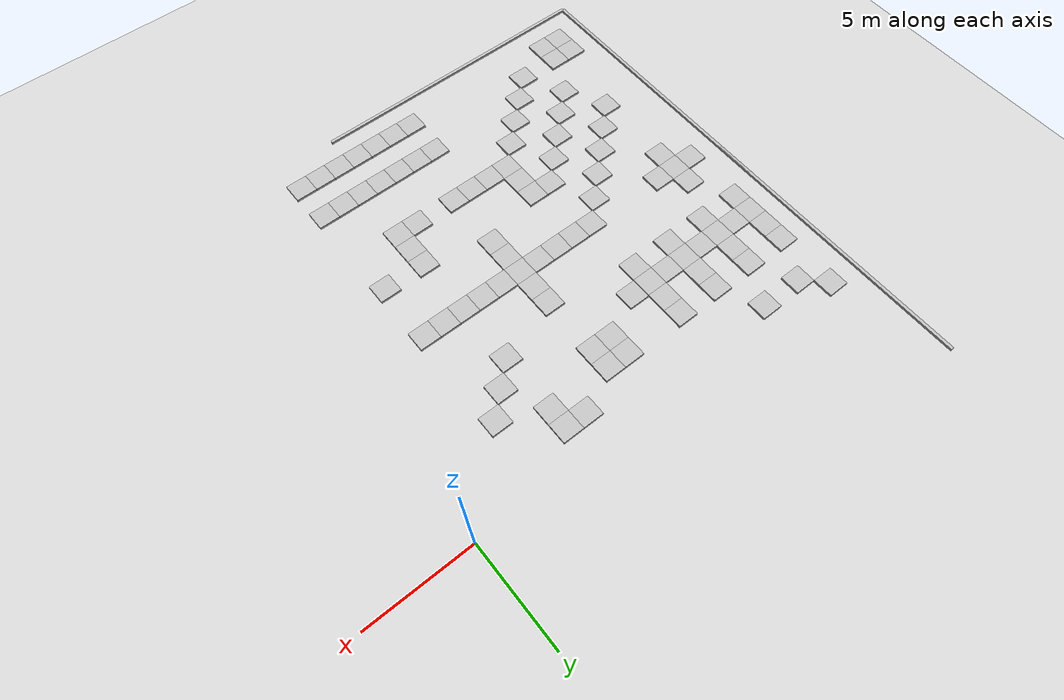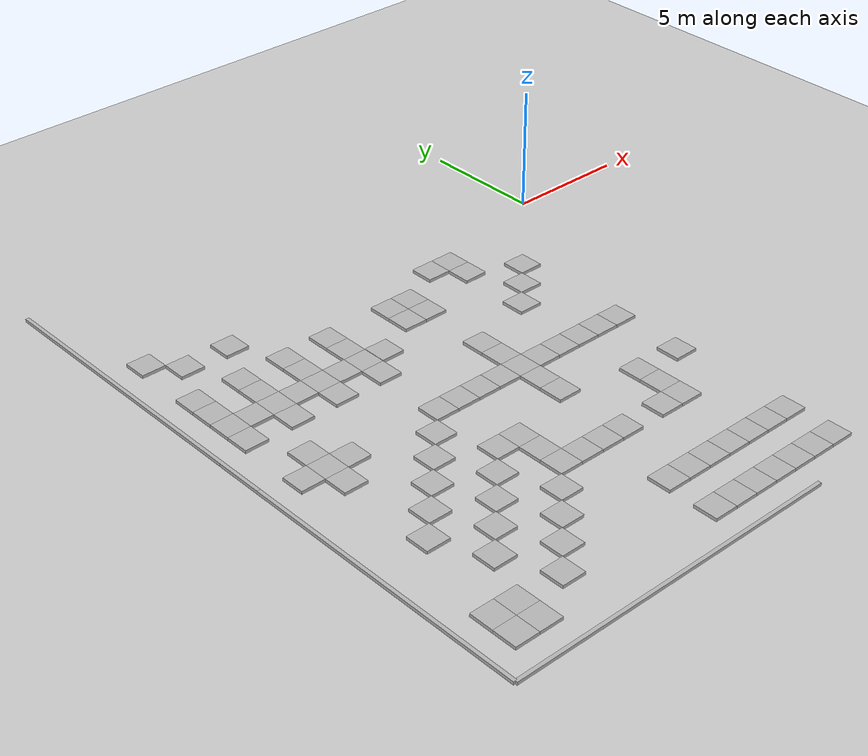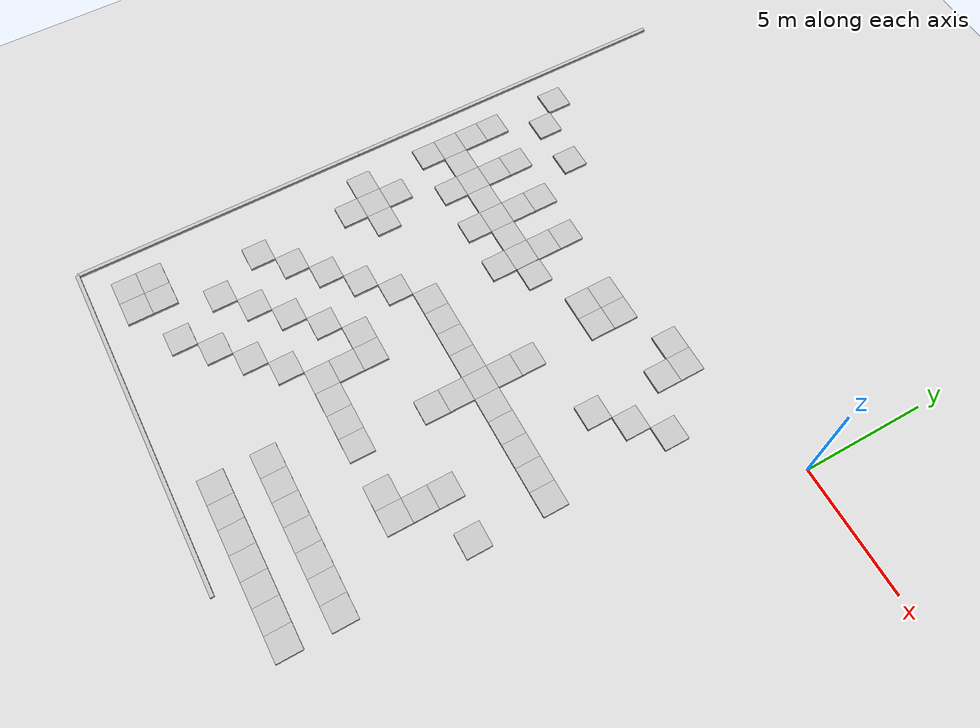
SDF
<sdf version="1.7">
 <world name="default">
  <model name="ground_plane">
   <static>1</static>
   <link name="link">
    <collision name="collision">
     <geometry><plane><normal>0 0 1</normal><size>100 100</size></plane></geometry>
     <surface>
      <contact><collide_bitmask>65535</collide_bitmask></contact>
      <friction><ode><mu>100</mu><mu2>50</mu2></ode></friction>
     </surface>
    </collision>
    <visual name="visual">
     <cast_shadows>0</cast_shadows>
     <geometry><plane><normal>0 0 1</normal><size>100 100</size></plane></geometry>
     <material>
      <script><uri>file://media/materials/scripts/gazebo.material</uri><name>Gazebo/Grey</name></script>
     </material>
    </visual>
   </link>
  </model>
  <model name="concrete_barrier_14m_6">
   <static>1</static>
   <link name="link">
    <collision name="concrete_barrier_14m_01">
     <pose>-0 0 0.3 0 -0 0</pose>
     <geometry><box><size>14 0.15 0.6</size></box></geometry>
    </collision>
    <visual name="concrete_barrier_14m_visual">
     <geometry><mesh><uri>model://concrete_barrier_14m/meshes/concrete_barrier_14m.dae</uri></mesh></geometry>
    </visual>
   </link>
   <pose>-13 -20 0 0 0 -1.56953</pose>
  </model>
  <model name="concrete_cube_1m_12">
   <static>1</static>
   <link name="link">
    <collision name="concrete_cube_1m">
     <pose>-0 0 0.3 0 -0 0</pose>
     <geometry><box><size>1 1 0.6</size></box></geometry>
    </collision>
    <visual name="concrete_cube_1m_visual">
     <geometry><mesh><uri>model://concrete_cube_1m/meshes/concrete_cube_1m.dae</uri></mesh></geometry>
    </visual>
   </link>
   <pose>-8.5 -8.5 0 0 -0 0</pose>
  </model>
  <model name="concrete_cube_1m_13">
   <static>1</static>
   <link name="link">
    <collision name="concrete_cube_1m">
     <pose>-0 0 0.3 0 -0 0</pose>
     <geometry><box><size>1 1 0.6</size></box></geometry>
    </collision>
    <visual name="concrete_cube_1m_visual">
     <geometry><mesh><uri>model://concrete_cube_1m/meshes/concrete_cube_1m.dae</uri></mesh></geometry>
    </visual>
   </link>
   <pose>-7.5 -8.5 0 0 -0 0</pose>
  </model>
  <model name="concrete_cube_1m_14">
   <static>1</static>
   <link name="link">
    <collision name="concrete_cube_1m">
     <pose>-0 0 0.3 0 -0 0</pose>
     <geometry><box><size>1 1 0.6</size></box></geometry>
    </collision>
    <visual name="concrete_cube_1m_visual">
     <geometry><mesh><uri>model://concrete_cube_1m/meshes/concrete_cube_1m.dae</uri></mesh></geometry>
    </visual>
   </link>
   <pose>-6.5 -8.5 0 0 -0 0</pose>
  </model>
  <model name="concrete_cube_1m_15">
   <static>1</static>
   <link name="link">
    <collision name="concrete_cube_1m">
     <pose>-0 0 0.3 0 -0 0</pose>
     <geometry><box><size>1 1 0.6</size></box></geometry>
    </collision>
    <visual name="concrete_cube_1m_visual">
     <geometry><mesh><uri>model://concrete_cube_1m/meshes/concrete_cube_1m.dae</uri></mesh></geometry>
    </visual>
   </link>
   <pose>-8.5 -7.5 0 0 -0 0</pose>
  </model>
  <model name="concrete_cube_1m_16">
   <static>1</static>
   <link name="link">
    <collision name="concrete_cube_1m">
     <pose>-0 0 0.3 0 -0 0</pose>
     <geometry><box><size>1 1 0.6</size></box></geometry>
    </collision>
    <visual name="concrete_cube_1m_visual">
     <geometry><mesh><uri>model://concrete_cube_1m/meshes/concrete_cube_1m.dae</uri></mesh></geometry>
    </visual>
   </link>
   <pose>-8.5 -6.5 0 0 -0 0</pose>
  </model>
  <model name="concrete_cube_1m_88">
   <static>1</static>
   <link name="link">
    <collision name="concrete_cube_1m">
     <pose>-0 0 0.3 0 -0 0</pose>
     <geometry><box><size>1 1 0.6</size></box></geometry>
    </collision>
    <visual name="concrete_cube_1m_visual">
     <geometry><mesh><uri>model://concrete_cube_1m/meshes/concrete_cube_1m.dae</uri></mesh></geometry>
    </visual>
   </link>
   <pose>-5.5 -8.5 0 0 -0 0</pose>
  </model>
  <model name="concrete_cube_1m_89">
   <static>1</static>
   <link name="link">
    <collision name="concrete_cube_1m">
     <pose>-0 0 0.3 0 -0 0</pose>
     <geometry><box><size>1 1 0.6</size></box></geometry>
    </collision>
    <visual name="concrete_cube_1m_visual">
     <geometry><mesh><uri>model://concrete_cube_1m/meshes/concrete_cube_1m.dae</uri></mesh></geometry>
    </visual>
   </link>
   <pose>-4.5 -8.5 0 0 -0 0</pose>
  </model>
  <model name="concrete_cube_1m_90">
   <static>1</static>
   <link name="link">
    <collision name="concrete_cube_1m">
     <pose>-0 0 0.3 0 -0 0</pose>
     <geometry><box><size>1 1 0.6</size></box></geometry>
    </collision>
    <visual name="concrete_cube_1m_visual">
     <geometry><mesh><uri>model://concrete_cube_1m/meshes/concrete_cube_1m.dae</uri></mesh></geometry>
    </visual>
   </link>
   <pose>-3.5 -8.5 0 0 -0 0</pose>
  </model>
  <model name="concrete_cube_1m_92">
   <static>1</static>
   <link name="link">
    <collision name="concrete_cube_1m">
     <pose>-0 0 0.3 0 -0 0</pose>
     <geometry><box><size>1 1 0.6</size></box></geometry>
    </collision>
    <visual name="concrete_cube_1m_visual">
     <geometry><mesh><uri>model://concrete_cube_1m/meshes/concrete_cube_1m.dae</uri></mesh></geometry>
    </visual>
   </link>
   <pose>-9.5 -3.5 0 0 -0 0</pose>
  </model>
  <model name="concrete_cube_1m_93">
   <static>1</static>
   <link name="link">
    <collision name="concrete_cube_1m">
     <pose>-0 0 0.3 0 -0 0</pose>
     <geometry><box><size>1 1 0.6</size></box></geometry>
    </collision>
    <visual name="concrete_cube_1m_visual">
     <geometry><mesh><uri>model://concrete_cube_1m/meshes/concrete_cube_1m.dae</uri></mesh></geometry>
    </visual>
   </link>
   <pose>-8.5 -3.5 0 0 -0 0</pose>
  </model>
  <model name="concrete_cube_1m_94">
   <static>1</static>
   <link name="link">
    <collision name="concrete_cube_1m">
     <pose>-0 0 0.3 0 -0 0</pose>
     <geometry><box><size>1 1 0.6</size></box></geometry>
    </collision>
    <visual name="concrete_cube_1m_visual">
     <geometry><mesh><uri>model://concrete_cube_1m/meshes/concrete_cube_1m.dae</uri></mesh></geometry>
    </visual>
   </link>
   <pose>-8.5 -2.5 0 0 -0 0</pose>
  </model>
  <model name="concrete_cube_1m_95">
   <static>1</static>
   <link name="link">
    <collision name="concrete_cube_1m">
     <pose>-0 0 0.3 0 -0 0</pose>
     <geometry><box><size>1 1 0.6</size></box></geometry>
    </collision>
    <visual name="concrete_cube_1m_visual">
     <geometry><mesh><uri>model://concrete_cube_1m/meshes/concrete_cube_1m.dae</uri></mesh></geometry>
    </visual>
   </link>
   <pose>-9.5 -2.5 0 0 -0 0</pose>
  </model>
  <model name="concrete_cube_1m_96">
   <static>1</static>
   <link name="link">
    <collision name="concrete_cube_1m">
     <pose>-0 0 0.3 0 -0 0</pose>
     <geometry><box><size>1 1 0.6</size></box></geometry>
    </collision>
    <visual name="concrete_cube_1m_visual">
     <geometry><mesh><uri>model://concrete_cube_1m/meshes/concrete_cube_1m.dae</uri></mesh></geometry>
    </visual>
   </link>
   <pose>-5.5 -5.5 0 0 -0 0</pose>
  </model>
  <model name="concrete_cube_1m_97">
   <static>1</static>
   <link name="link">
    <collision name="concrete_cube_1m">
     <pose>-0 0 0.3 0 -0 0</pose>
     <geometry><box><size>1 1 0.6</size></box></geometry>
    </collision>
    <visual name="concrete_cube_1m_visual">
     <geometry><mesh><uri>model://concrete_cube_1m/meshes/concrete_cube_1m.dae</uri></mesh></geometry>
    </visual>
   </link>
   <pose>-4.5 -4.5 0 0 -0 0</pose>
  </model>
  <model name="concrete_cube_1m_98">
   <static>1</static>
   <link name="link">
    <collision name="concrete_cube_1m">
     <pose>-0 0 0.3 0 -0 0</pose>
     <geometry><box><size>1 1 0.6</size></box></geometry>
    </collision>
    <visual name="concrete_cube_1m_visual">
     <geometry><mesh><uri>model://concrete_cube_1m/meshes/concrete_cube_1m.dae</uri></mesh></geometry>
    </visual>
   </link>
   <pose>-3.5 -3.5 0 0 -0 0</pose>
  </model>
  <model name="concrete_cube_1m_100">
   <static>1</static>
   <link name="link">
    <collision name="concrete_cube_1m">
     <pose>-0 0 0.3 0 -0 0</pose>
     <geometry><box><size>1 1 0.6</size></box></geometry>
    </collision>
    <visual name="concrete_cube_1m_visual">
     <geometry><mesh><uri>model://concrete_cube_1m/meshes/concrete_cube_1m.dae</uri></mesh></geometry>
    </visual>
   </link>
   <pose>-6.5 -1.5 0 0 -0 0</pose>
  </model>
  <model name="concrete_cube_1m_101">
   <static>1</static>
   <link name="link">
    <collision name="concrete_cube_1m">
     <pose>-0 0 0.3 0 -0 0</pose>
     <geometry><box><size>1 1 0.6</size></box></geometry>
    </collision>
    <visual name="concrete_cube_1m_visual">
     <geometry><mesh><uri>model://concrete_cube_1m/meshes/concrete_cube_1m.dae</uri></mesh></geometry>
    </visual>
   </link>
   <pose>-5.5 -1.5 0 0 -0 0</pose>
  </model>
  <model name="concrete_cube_1m_102">
   <static>1</static>
   <link name="link">
    <collision name="concrete_cube_1m">
     <pose>-0 0 0.3 0 -0 0</pose>
     <geometry><box><size>1 1 0.6</size></box></geometry>
    </collision>
    <visual name="concrete_cube_1m_visual">
     <geometry><mesh><uri>model://concrete_cube_1m/meshes/concrete_cube_1m.dae</uri></mesh></geometry>
    </visual>
   </link>
   <pose>-5.5 -2.5 0 0 -0 0</pose>
  </model>
  <model name="concrete_cube_1m_109">
   <static>1</static>
   <link name="link">
    <collision name="concrete_cube_1m">
     <pose>-0 0 0.3 0 -0 0</pose>
     <geometry><box><size>1 1 0.6</size></box></geometry>
    </collision>
    <visual name="concrete_cube_1m_visual">
     <geometry><mesh><uri>model://concrete_cube_1m/meshes/concrete_cube_1m.dae</uri></mesh></geometry>
    </visual>
   </link>
   <pose>-13.5 -12.5 0 0 -0 0</pose>
  </model>
  <model name="concrete_cube_1m_183">
   <static>1</static>
   <link name="link">
    <collision name="concrete_cube_1m">
     <pose>-0 0 0.3 0 -0 0</pose>
     <geometry><box><size>1 1 0.6</size></box></geometry>
    </collision>
    <visual name="concrete_cube_1m_visual">
     <geometry><mesh><uri>model://concrete_cube_1m/meshes/concrete_cube_1m.dae</uri></mesh></geometry>
    </visual>
   </link>
   <pose>-8.5 -9.5 0 0 -0 0</pose>
  </model>
  <model name="concrete_cube_1m_184">
   <static>1</static>
   <link name="link">
    <collision name="concrete_cube_1m">
     <pose>-0 0 0.3 0 -0 0</pose>
     <geometry><box><size>1 1 0.6</size></box></geometry>
    </collision>
    <visual name="concrete_cube_1m_visual">
     <geometry><mesh><uri>model://concrete_cube_1m/meshes/concrete_cube_1m.dae</uri></mesh></geometry>
    </visual>
   </link>
   <pose>-8.5 -10.5 0 0 -0 0</pose>
  </model>
  <model name="concrete_cube_1m_185">
   <static>1</static>
   <link name="link">
    <collision name="concrete_cube_1m">
     <pose>-0 0 0.3 0 -0 0</pose>
     <geometry><box><size>1 1 0.6</size></box></geometry>
    </collision>
    <visual name="concrete_cube_1m_visual">
     <geometry><mesh><uri>model://concrete_cube_1m/meshes/concrete_cube_1m.dae</uri></mesh></geometry>
    </visual>
   </link>
   <pose>-9.5 -8.5 0 0 -0 0</pose>
  </model>
  <model name="concrete_cube_1m_186">
   <static>1</static>
   <link name="link">
    <collision name="concrete_cube_1m">
     <pose>-0 0 0.3 0 -0 0</pose>
     <geometry><box><size>1 1 0.6</size></box></geometry>
    </collision>
    <visual name="concrete_cube_1m_visual">
     <geometry><mesh><uri>model://concrete_cube_1m/meshes/concrete_cube_1m.dae</uri></mesh></geometry>
    </visual>
   </link>
   <pose>-10.5 -8.5 0 0 -0 0</pose>
  </model>
  <model name="concrete_cube_1m_187">
   <static>1</static>
   <link name="link">
    <collision name="concrete_cube_1m">
     <pose>-0 0 0.3 0 -0 0</pose>
     <geometry><box><size>1 1 0.6</size></box></geometry>
    </collision>
    <visual name="concrete_cube_1m_visual">
     <geometry><mesh><uri>model://concrete_cube_1m/meshes/concrete_cube_1m.dae</uri></mesh></geometry>
    </visual>
   </link>
   <pose>-11.5 -8.5 0 0 -0 0</pose>
  </model>
  <model name="concrete_cube_1m_188">
   <static>1</static>
   <link name="link">
    <collision name="concrete_cube_1m">
     <pose>-0 0 0.3 0 -0 0</pose>
     <geometry><box><size>1 1 0.6</size></box></geometry>
    </collision>
    <visual name="concrete_cube_1m_visual">
     <geometry><mesh><uri>model://concrete_cube_1m/meshes/concrete_cube_1m.dae</uri></mesh></geometry>
    </visual>
   </link>
   <pose>-12.5 -8.5 0 0 -0 0</pose>
  </model>
  <model name="concrete_cube_1m_189">
   <static>1</static>
   <link name="link">
    <collision name="concrete_cube_1m">
     <pose>-0 0 0.3 0 -0 0</pose>
     <geometry><box><size>1 1 0.6</size></box></geometry>
    </collision>
    <visual name="concrete_cube_1m_visual">
     <geometry><mesh><uri>model://concrete_cube_1m/meshes/concrete_cube_1m.dae</uri></mesh></geometry>
    </visual>
   </link>
   <pose>-12.5 -5.5 0 0 -0 0</pose>
  </model>
  <model name="concrete_cube_1m_190">
   <static>1</static>
   <link name="link">
    <collision name="concrete_cube_1m">
     <pose>-0 0 0.3 0 -0 0</pose>
     <geometry><box><size>1 1 0.6</size></box></geometry>
    </collision>
    <visual name="concrete_cube_1m_visual">
     <geometry><mesh><uri>model://concrete_cube_1m/meshes/concrete_cube_1m.dae</uri></mesh></geometry>
    </visual>
   </link>
   <pose>-12.5 -4.5 0 0 -0 0</pose>
  </model>
  <model name="concrete_cube_1m_191">
   <static>1</static>
   <link name="link">
    <collision name="concrete_cube_1m">
     <pose>-0 0 0.3 0 -0 0</pose>
     <geometry><box><size>1 1 0.6</size></box></geometry>
    </collision>
    <visual name="concrete_cube_1m_visual">
     <geometry><mesh><uri>model://concrete_cube_1m/meshes/concrete_cube_1m.dae</uri></mesh></geometry>
    </visual>
   </link>
   <pose>-12.5 -3.5 0 0 -0 0</pose>
  </model>
  <model name="concrete_cube_1m_194">
   <static>1</static>
   <link name="link">
    <collision name="concrete_cube_1m">
     <pose>-0 0 0.3 0 -0 0</pose>
     <geometry><box><size>1 1 0.6</size></box></geometry>
    </collision>
    <visual name="concrete_cube_1m_visual">
     <geometry><mesh><uri>model://concrete_cube_1m/meshes/concrete_cube_1m.dae</uri></mesh></geometry>
    </visual>
   </link>
   <pose>-3.5 -11.5 0 0 -0 0</pose>
  </model>
  <model name="concrete_cube_1m_195">
   <static>1</static>
   <link name="link">
    <collision name="concrete_cube_1m">
     <pose>-0 0 0.3 0 -0 0</pose>
     <geometry><box><size>1 1 0.6</size></box></geometry>
    </collision>
    <visual name="concrete_cube_1m_visual">
     <geometry><mesh><uri>model://concrete_cube_1m/meshes/concrete_cube_1m.dae</uri></mesh></geometry>
    </visual>
   </link>
   <pose>-10.5 -13.5 0 0 -0 0</pose>
  </model>
  <model name="concrete_cube_1m_196">
   <static>1</static>
   <link name="link">
    <collision name="concrete_cube_1m">
     <pose>-0 0 0.3 0 -0 0</pose>
     <geometry><box><size>1 1 0.6</size></box></geometry>
    </collision>
    <visual name="concrete_cube_1m_visual">
     <geometry><mesh><uri>model://concrete_cube_1m/meshes/concrete_cube_1m.dae</uri></mesh></geometry>
    </visual>
   </link>
   <pose>-9.5 -13.5 0 0 -0 0</pose>
  </model>
  <model name="concrete_cube_1m_197">
   <static>1</static>
   <link name="link">
    <collision name="concrete_cube_1m">
     <pose>-0 0 0.3 0 -0 0</pose>
     <geometry><box><size>1 1 0.6</size></box></geometry>
    </collision>
    <visual name="concrete_cube_1m_visual">
     <geometry><mesh><uri>model://concrete_cube_1m/meshes/concrete_cube_1m.dae</uri></mesh></geometry>
    </visual>
   </link>
   <pose>-8.5 -13.5 0 0 -0 0</pose>
  </model>
  <model name="concrete_cube_1m_199">
   <static>1</static>
   <link name="link">
    <collision name="concrete_cube_1m">
     <pose>-0 0 0.3 0 -0 0</pose>
     <geometry><box><size>1 1 0.6</size></box></geometry>
    </collision>
    <visual name="concrete_cube_1m_visual">
     <geometry><mesh><uri>model://concrete_cube_1m/meshes/concrete_cube_1m.dae</uri></mesh></geometry>
    </visual>
   </link>
   <pose>-6.5 -13.5 0 0 -0 0</pose>
  </model>
  <model name="concrete_cube_1m_200">
   <static>1</static>
   <link name="link">
    <collision name="concrete_cube_1m">
     <pose>-0 0 0.3 0 -0 0</pose>
     <geometry><box><size>1 1 0.6</size></box></geometry>
    </collision>
    <visual name="concrete_cube_1m_visual">
     <geometry><mesh><uri>model://concrete_cube_1m/meshes/concrete_cube_1m.dae</uri></mesh></geometry>
    </visual>
   </link>
   <pose>-5.5 -13.5 0 0 -0 0</pose>
  </model>
  <model name="concrete_cube_1m_201">
   <static>1</static>
   <link name="link">
    <collision name="concrete_cube_1m">
     <pose>-0 0 0.3 0 -0 0</pose>
     <geometry><box><size>1 1 0.6</size></box></geometry>
    </collision>
    <visual name="concrete_cube_1m_visual">
     <geometry><mesh><uri>model://concrete_cube_1m/meshes/concrete_cube_1m.dae</uri></mesh></geometry>
    </visual>
   </link>
   <pose>-5.5 -12.5 0 0 -0 0</pose>
  </model>
  <model name="concrete_cube_1m_202">
   <static>1</static>
   <link name="link">
    <collision name="concrete_cube_1m">
     <pose>-0 0 0.3 0 -0 0</pose>
     <geometry><box><size>1 1 0.6</size></box></geometry>
    </collision>
    <visual name="concrete_cube_1m_visual">
     <geometry><mesh><uri>model://concrete_cube_1m/meshes/concrete_cube_1m.dae</uri></mesh></geometry>
    </visual>
   </link>
   <pose>-5.5 -11.5 0 0 -0 0</pose>
  </model>
  <model name="concrete_cube_1m_203">
   <static>1</static>
   <link name="link">
    <collision name="concrete_cube_1m">
     <pose>-0 0 0.3 0 -0 0</pose>
     <geometry><box><size>1 1 0.6</size></box></geometry>
    </collision>
    <visual name="concrete_cube_1m_visual">
     <geometry><mesh><uri>model://concrete_cube_1m/meshes/concrete_cube_1m.dae</uri></mesh></geometry>
    </visual>
   </link>
   <pose>-11.5 -13.5 0 0 -0 0</pose>
  </model>
  <model name="concrete_cube_1m_204">
   <static>1</static>
   <link name="link">
    <collision name="concrete_cube_1m">
     <pose>-0 0 0.3 0 -0 0</pose>
     <geometry><box><size>1 1 0.6</size></box></geometry>
    </collision>
    <visual name="concrete_cube_1m_visual">
     <geometry><mesh><uri>model://concrete_cube_1m/meshes/concrete_cube_1m.dae</uri></mesh></geometry>
    </visual>
   </link>
   <pose>-11.5 -12.5 0 0 -0 0</pose>
  </model>
  <model name="concrete_cube_1m_205">
   <static>1</static>
   <link name="link">
    <collision name="concrete_cube_1m">
     <pose>-0 0 0.3 0 -0 0</pose>
     <geometry><box><size>1 1 0.6</size></box></geometry>
    </collision>
    <visual name="concrete_cube_1m_visual">
     <geometry><mesh><uri>model://concrete_cube_1m/meshes/concrete_cube_1m.dae</uri></mesh></geometry>
    </visual>
   </link>
   <pose>-11.5 -11.5 0 0 -0 0</pose>
  </model>
  <model name="concrete_cube_1m_206">
   <static>1</static>
   <link name="link">
    <collision name="concrete_cube_1m">
     <pose>-0 0 0.3 0 -0 0</pose>
     <geometry><box><size>1 1 0.6</size></box></geometry>
    </collision>
    <visual name="concrete_cube_1m_visual">
     <geometry><mesh><uri>model://concrete_cube_1m/meshes/concrete_cube_1m.dae</uri></mesh></geometry>
    </visual>
   </link>
   <pose>-12.5 -11.5 0 0 -0 0</pose>
  </model>
  <model name="concrete_cube_1m_208">
   <static>1</static>
   <link name="link">
    <collision name="concrete_cube_1m">
     <pose>-0 0 0.3 0 -0 0</pose>
     <geometry><box><size>1 1 0.6</size></box></geometry>
    </collision>
    <visual name="concrete_cube_1m_visual">
     <geometry><mesh><uri>model://concrete_cube_1m/meshes/concrete_cube_1m.dae</uri></mesh></geometry>
    </visual>
   </link>
   <pose>-11.4847 -4.47764 0 0 -0 0</pose>
  </model>
  <model name="concrete_cube_1m_209">
   <static>1</static>
   <link name="link">
    <collision name="concrete_cube_1m">
     <pose>-0 0 0.3 0 -0 0</pose>
     <geometry><box><size>1 1 0.6</size></box></geometry>
    </collision>
    <visual name="concrete_cube_1m_visual">
     <geometry><mesh><uri>model://concrete_cube_1m/meshes/concrete_cube_1m.dae</uri></mesh></geometry>
    </visual>
   </link>
   <pose>-13.5 -4.5 0 0 -0 0</pose>
  </model>
  <model name="concrete_barrier_14m_8">
   <static>1</static>
   <link name="link">
    <collision name="concrete_barrier_14m_01">
     <pose>-0 0 0.3 0 -0 0</pose>
     <geometry><box><size>14 0.15 0.6</size></box></geometry>
    </collision>
    <visual name="concrete_barrier_14m_visual">
     <geometry><mesh><uri>model://concrete_barrier_14m/meshes/concrete_barrier_14m.dae</uri></mesh></geometry>
    </visual>
   </link>
   <pose>-20 -1 0 0 -0 0</pose>
  </model>
  <model name="concrete_barrier_14m_9">
   <static>1</static>
   <link name="link">
    <collision name="concrete_barrier_14m_01">
     <pose>-0 0 0.3 0 -0 0</pose>
     <geometry><box><size>14 0.15 0.6</size></box></geometry>
    </collision>
    <visual name="concrete_barrier_14m_visual">
     <geometry><mesh><uri>model://concrete_barrier_14m/meshes/concrete_barrier_14m.dae</uri></mesh></geometry>
    </visual>
   </link>
   <pose>-20 -13 0 0 -0 0</pose>
  </model>
  <model name="concrete_cube_1m_345">
   <static>1</static>
   <link name="link">
    <collision name="concrete_cube_1m">
     <pose>-0 0 0.3 0 -0 0</pose>
     <geometry><box><size>1 1 0.6</size></box></geometry>
    </collision>
    <visual name="concrete_cube_1m_visual">
     <geometry><mesh><uri>model://concrete_cube_1m/meshes/concrete_cube_1m.dae</uri></mesh></geometry>
    </visual>
   </link>
   <pose>-18.5 0.5 0 0 -0 0</pose>
  </model>
  <model name="concrete_cube_1m_349">
   <static>1</static>
   <link name="link">
    <collision name="concrete_cube_1m">
     <pose>-0 0 0.3 0 -0 0</pose>
     <geometry><box><size>1 1 0.6</size></box></geometry>
    </collision>
    <visual name="concrete_cube_1m_visual">
     <geometry><mesh><uri>model://concrete_cube_1m/meshes/concrete_cube_1m.dae</uri></mesh></geometry>
    </visual>
   </link>
   <pose>-14.5 -4.5 0 0 -0 0</pose>
  </model>
  <model name="concrete_cube_1m_350">
   <static>1</static>
   <link name="link">
    <collision name="concrete_cube_1m">
     <pose>-0 0 0.3 0 -0 0</pose>
     <geometry><box><size>1 1 0.6</size></box></geometry>
    </collision>
    <visual name="concrete_cube_1m_visual">
     <geometry><mesh><uri>model://concrete_cube_1m/meshes/concrete_cube_1m.dae</uri></mesh></geometry>
    </visual>
   </link>
   <pose>-14.5 -3.5 0 0 -0 0</pose>
  </model>
  <model name="concrete_cube_1m_351">
   <static>1</static>
   <link name="link">
    <collision name="concrete_cube_1m">
     <pose>-0 0 0.3 0 -0 0</pose>
     <geometry><box><size>1 1 0.6</size></box></geometry>
    </collision>
    <visual name="concrete_cube_1m_visual">
     <geometry><mesh><uri>model://concrete_cube_1m/meshes/concrete_cube_1m.dae</uri></mesh></geometry>
    </visual>
   </link>
   <pose>-14.5 -5.5 0 0 -0 0</pose>
  </model>
  <model name="concrete_cube_1m_352">
   <static>1</static>
   <link name="link">
    <collision name="concrete_cube_1m">
     <pose>-0 0 0.3 0 -0 0</pose>
     <geometry><box><size>1 1 0.6</size></box></geometry>
    </collision>
    <visual name="concrete_cube_1m_visual">
     <geometry><mesh><uri>model://concrete_cube_1m/meshes/concrete_cube_1m.dae</uri></mesh></geometry>
    </visual>
   </link>
   <pose>-15.5 -4.5 0 0 -0 0</pose>
  </model>
  <model name="concrete_cube_1m_353">
   <static>1</static>
   <link name="link">
    <collision name="concrete_cube_1m">
     <pose>-0 0 0.3 0 -0 0</pose>
     <geometry><box><size>1 1 0.6</size></box></geometry>
    </collision>
    <visual name="concrete_cube_1m_visual">
     <geometry><mesh><uri>model://concrete_cube_1m/meshes/concrete_cube_1m.dae</uri></mesh></geometry>
    </visual>
   </link>
   <pose>-16.5 -4.5 0 0 -0 0</pose>
  </model>
  <model name="concrete_cube_1m_354">
   <static>1</static>
   <link name="link">
    <collision name="concrete_cube_1m">
     <pose>-0 0 0.3 0 -0 0</pose>
     <geometry><box><size>1 1 0.6</size></box></geometry>
    </collision>
    <visual name="concrete_cube_1m_visual">
     <geometry><mesh><uri>model://concrete_cube_1m/meshes/concrete_cube_1m.dae</uri></mesh></geometry>
    </visual>
   </link>
   <pose>-16.5 -3.5 0 0 -0 0</pose>
  </model>
  <model name="concrete_cube_1m_355">
   <static>1</static>
   <link name="link">
    <collision name="concrete_cube_1m">
     <pose>-0 0 0.3 0 -0 0</pose>
     <geometry><box><size>1 1 0.6</size></box></geometry>
    </collision>
    <visual name="concrete_cube_1m_visual">
     <geometry><mesh><uri>model://concrete_cube_1m/meshes/concrete_cube_1m.dae</uri></mesh></geometry>
    </visual>
   </link>
   <pose>-16.5 -5.5 0 0 -0 0</pose>
  </model>
  <model name="concrete_cube_1m_356">
   <static>1</static>
   <link name="link">
    <collision name="concrete_cube_1m">
     <pose>-0 0 0.3 0 -0 0</pose>
     <geometry><box><size>1 1 0.6</size></box></geometry>
    </collision>
    <visual name="concrete_cube_1m_visual">
     <geometry><mesh><uri>model://concrete_cube_1m/meshes/concrete_cube_1m.dae</uri></mesh></geometry>
    </visual>
   </link>
   <pose>-17.5 -4.5 0 0 -0 0</pose>
  </model>
  <model name="concrete_cube_1m_357">
   <static>1</static>
   <link name="link">
    <collision name="concrete_cube_1m">
     <pose>-0 0 0.3 0 -0 0</pose>
     <geometry><box><size>1 1 0.6</size></box></geometry>
    </collision>
    <visual name="concrete_cube_1m_visual">
     <geometry><mesh><uri>model://concrete_cube_1m/meshes/concrete_cube_1m.dae</uri></mesh></geometry>
    </visual>
   </link>
   <pose>-18.5 -4.5 0 0 -0 0</pose>
  </model>
  <model name="concrete_cube_1m_358">
   <static>1</static>
   <link name="link">
    <collision name="concrete_cube_1m">
     <pose>-0 0 0.3 0 -0 0</pose>
     <geometry><box><size>1 1 0.6</size></box></geometry>
    </collision>
    <visual name="concrete_cube_1m_visual">
     <geometry><mesh><uri>model://concrete_cube_1m/meshes/concrete_cube_1m.dae</uri></mesh></geometry>
    </visual>
   </link>
   <pose>-18.5 -3.5 0 0 -0 0</pose>
  </model>
  <model name="concrete_cube_1m_359">
   <static>1</static>
   <link name="link">
    <collision name="concrete_cube_1m">
     <pose>-0 0 0.3 0 -0 0</pose>
     <geometry><box><size>1 1 0.6</size></box></geometry>
    </collision>
    <visual name="concrete_cube_1m_visual">
     <geometry><mesh><uri>model://concrete_cube_1m/meshes/concrete_cube_1m.dae</uri></mesh></geometry>
    </visual>
   </link>
   <pose>-18.5 -5.5 0 0 -0 0</pose>
  </model>
  <model name="concrete_cube_1m_360">
   <static>1</static>
   <link name="link">
    <collision name="concrete_cube_1m">
     <pose>-0 0 0.3 0 -0 0</pose>
     <geometry><box><size>1 1 0.6</size></box></geometry>
    </collision>
    <visual name="concrete_cube_1m_visual">
     <geometry><mesh><uri>model://concrete_cube_1m/meshes/concrete_cube_1m.dae</uri></mesh></geometry>
    </visual>
   </link>
   <pose>-13.5 -9.5 0 0 -0 0</pose>
  </model>
  <model name="concrete_cube_1m_361">
   <static>1</static>
   <link name="link">
    <collision name="concrete_cube_1m">
     <pose>-0 0 0.3 0 -0 0</pose>
     <geometry><box><size>1 1 0.6</size></box></geometry>
    </collision>
    <visual name="concrete_cube_1m_visual">
     <geometry><mesh><uri>model://concrete_cube_1m/meshes/concrete_cube_1m.dae</uri></mesh></geometry>
    </visual>
   </link>
   <pose>-14.5 -10.5 0 0 -0 0</pose>
  </model>
  <model name="concrete_cube_1m_362">
   <static>1</static>
   <link name="link">
    <collision name="concrete_cube_1m">
     <pose>-0 0 0.3 0 -0 0</pose>
     <geometry><box><size>1 1 0.6</size></box></geometry>
    </collision>
    <visual name="concrete_cube_1m_visual">
     <geometry><mesh><uri>model://concrete_cube_1m/meshes/concrete_cube_1m.dae</uri></mesh></geometry>
    </visual>
   </link>
   <pose>-15.5 -11.5 0 0 -0 0</pose>
  </model>
  <model name="concrete_cube_1m_363">
   <static>1</static>
   <link name="link">
    <collision name="concrete_cube_1m">
     <pose>-0 0 0.3 0 -0 0</pose>
     <geometry><box><size>1 1 0.6</size></box></geometry>
    </collision>
    <visual name="concrete_cube_1m_visual">
     <geometry><mesh><uri>model://concrete_cube_1m/meshes/concrete_cube_1m.dae</uri></mesh></geometry>
    </visual>
   </link>
   <pose>-16.5 -12.5 0 0 -0 0</pose>
  </model>
  <model name="concrete_cube_1m_364">
   <static>1</static>
   <link name="link">
    <collision name="concrete_cube_1m">
     <pose>-0 0 0.3 0 -0 0</pose>
     <geometry><box><size>1 1 0.6</size></box></geometry>
    </collision>
    <visual name="concrete_cube_1m_visual">
     <geometry><mesh><uri>model://concrete_cube_1m/meshes/concrete_cube_1m.dae</uri></mesh></geometry>
    </visual>
   </link>
   <pose>-17.5 -13.5 0 0 -0 0</pose>
  </model>
  <model name="concrete_cube_1m_365">
   <static>1</static>
   <link name="link">
    <collision name="concrete_cube_1m">
     <pose>-0 0 0.3 0 -0 0</pose>
     <geometry><box><size>1 1 0.6</size></box></geometry>
    </collision>
    <visual name="concrete_cube_1m_visual">
     <geometry><mesh><uri>model://concrete_cube_1m/meshes/concrete_cube_1m.dae</uri></mesh></geometry>
    </visual>
   </link>
   <pose>-18.5 -8.5 0 0 -0 0</pose>
  </model>
  <model name="concrete_cube_1m_366">
   <static>1</static>
   <link name="link">
    <collision name="concrete_cube_1m">
     <pose>-0 0 0.3 0 -0 0</pose>
     <geometry><box><size>1 1 0.6</size></box></geometry>
    </collision>
    <visual name="concrete_cube_1m_visual">
     <geometry><mesh><uri>model://concrete_cube_1m/meshes/concrete_cube_1m.dae</uri></mesh></geometry>
    </visual>
   </link>
   <pose>-17.5 -8.5 0 0 -0 0</pose>
  </model>
  <model name="concrete_cube_1m_367">
   <static>1</static>
   <link name="link">
    <collision name="concrete_cube_1m">
     <pose>-0 0 0.3 0 -0 0</pose>
     <geometry><box><size>1 1 0.6</size></box></geometry>
    </collision>
    <visual name="concrete_cube_1m_visual">
     <geometry><mesh><uri>model://concrete_cube_1m/meshes/concrete_cube_1m.dae</uri></mesh></geometry>
    </visual>
   </link>
   <pose>-17.5 -7.5 0 0 -0 0</pose>
  </model>
  <model name="concrete_cube_1m_368">
   <static>1</static>
   <link name="link">
    <collision name="concrete_cube_1m">
     <pose>-0 0 0.3 0 -0 0</pose>
     <geometry><box><size>1 1 0.6</size></box></geometry>
    </collision>
    <visual name="concrete_cube_1m_visual">
     <geometry><mesh><uri>model://concrete_cube_1m/meshes/concrete_cube_1m.dae</uri></mesh></geometry>
    </visual>
   </link>
   <pose>-16.5 -8.5 0 0 -0 0</pose>
  </model>
  <model name="concrete_cube_1m_369">
   <static>1</static>
   <link name="link">
    <collision name="concrete_cube_1m">
     <pose>-0 0 0.3 0 -0 0</pose>
     <geometry><box><size>1 1 0.6</size></box></geometry>
    </collision>
    <visual name="concrete_cube_1m_visual">
     <geometry><mesh><uri>model://concrete_cube_1m/meshes/concrete_cube_1m.dae</uri></mesh></geometry>
    </visual>
   </link>
   <pose>-17.5 -9.5 0 0 -0 0</pose>
  </model>
  <model name="concrete_cube_1m_370">
   <static>1</static>
   <link name="link">
    <collision name="concrete_cube_1m">
     <pose>-0 0 0.3 0 -0 0</pose>
     <geometry><box><size>1 1 0.6</size></box></geometry>
    </collision>
    <visual name="concrete_cube_1m_visual">
     <geometry><mesh><uri>model://concrete_cube_1m/meshes/concrete_cube_1m.dae</uri></mesh></geometry>
    </visual>
   </link>
   <pose>-14.5 -13.5 0 0 -0 0</pose>
  </model>
  <model name="concrete_cube_1m_371">
   <static>1</static>
   <link name="link">
    <collision name="concrete_cube_1m">
     <pose>-0 0 0.3 0 -0 0</pose>
     <geometry><box><size>1 1 0.6</size></box></geometry>
    </collision>
    <visual name="concrete_cube_1m_visual">
     <geometry><mesh><uri>model://concrete_cube_1m/meshes/concrete_cube_1m.dae</uri></mesh></geometry>
    </visual>
   </link>
   <pose>-15.5 -14.5 0 0 -0 0</pose>
  </model>
  <model name="concrete_cube_1m_372">
   <static>1</static>
   <link name="link">
    <collision name="concrete_cube_1m">
     <pose>-0 0 0.3 0 -0 0</pose>
     <geometry><box><size>1 1 0.6</size></box></geometry>
    </collision>
    <visual name="concrete_cube_1m_visual">
     <geometry><mesh><uri>model://concrete_cube_1m/meshes/concrete_cube_1m.dae</uri></mesh></geometry>
    </visual>
   </link>
   <pose>-16.5 -15.5 0 0 -0 0</pose>
  </model>
  <model name="concrete_cube_1m_374">
   <static>1</static>
   <link name="link">
    <collision name="concrete_cube_1m">
     <pose>-0 0 0.3 0 -0 0</pose>
     <geometry><box><size>1 1 0.6</size></box></geometry>
    </collision>
    <visual name="concrete_cube_1m_visual">
     <geometry><mesh><uri>model://concrete_cube_1m/meshes/concrete_cube_1m.dae</uri></mesh></geometry>
    </visual>
   </link>
   <pose>-15.5 -0.5 0 0 -0 0</pose>
  </model>
  <model name="concrete_cube_1m_375">
   <static>1</static>
   <link name="link">
    <collision name="concrete_cube_1m">
     <pose>-0 0 0.3 0 -0 0</pose>
     <geometry><box><size>1 1 0.6</size></box></geometry>
    </collision>
    <visual name="concrete_cube_1m_visual">
     <geometry><mesh><uri>model://concrete_cube_1m/meshes/concrete_cube_1m.dae</uri></mesh></geometry>
    </visual>
   </link>
   <pose>-17.5 -0.5 0 0 -0 0</pose>
  </model>
  <model name="concrete_cube_1m_380">
   <static>1</static>
   <link name="link">
    <collision name="concrete_cube_1m">
     <pose>-0 0 0.3 0 -0 0</pose>
     <geometry><box><size>1 1 0.6</size></box></geometry>
    </collision>
    <visual name="concrete_cube_1m_visual">
     <geometry><mesh><uri>model://concrete_cube_1m/meshes/concrete_cube_1m.dae</uri></mesh></geometry>
    </visual>
   </link>
   <pose>-12.5 -2.5 0 0 -0 0</pose>
  </model>
  <model name="concrete_cube_1m_381">
   <static>1</static>
   <link name="link">
    <collision name="concrete_cube_1m">
     <pose>-0 0 0.3 0 -0 0</pose>
     <geometry><box><size>1 1 0.6</size></box></geometry>
    </collision>
    <visual name="concrete_cube_1m_visual">
     <geometry><mesh><uri>model://concrete_cube_1m/meshes/concrete_cube_1m.dae</uri></mesh></geometry>
    </visual>
   </link>
   <pose>-14.5 -2.5 0 0 -0 0</pose>
  </model>
  <model name="concrete_cube_1m_382">
   <static>1</static>
   <link name="link">
    <collision name="concrete_cube_1m">
     <pose>-0 0 0.3 0 -0 0</pose>
     <geometry><box><size>1 1 0.6</size></box></geometry>
    </collision>
    <visual name="concrete_cube_1m_visual">
     <geometry><mesh><uri>model://concrete_cube_1m/meshes/concrete_cube_1m.dae</uri></mesh></geometry>
    </visual>
   </link>
   <pose>-16.5 -2.5 0 0 -0 0</pose>
  </model>
  <model name="concrete_cube_1m_383">
   <static>1</static>
   <link name="link">
    <collision name="concrete_cube_1m">
     <pose>-0 0 0.3 0 -0 0</pose>
     <geometry><box><size>1 1 0.6</size></box></geometry>
    </collision>
    <visual name="concrete_cube_1m_visual">
     <geometry><mesh><uri>model://concrete_cube_1m/meshes/concrete_cube_1m.dae</uri></mesh></geometry>
    </visual>
   </link>
   <pose>-18.5 -2.5 0 0 -0 0</pose>
  </model>
  <model name="concrete_cube_1m_384">
   <static>1</static>
   <link name="link">
    <collision name="concrete_cube_1m">
     <pose>-0 0 0.3 0 -0 0</pose>
     <geometry><box><size>1 1 0.6</size></box></geometry>
    </collision>
    <visual name="concrete_cube_1m_visual">
     <geometry><mesh><uri>model://concrete_cube_1m/meshes/concrete_cube_1m.dae</uri></mesh></geometry>
    </visual>
   </link>
   <pose>-12.5 -14.5 0 0 -0 0</pose>
  </model>
  <model name="concrete_cube_1m_385">
   <static>1</static>
   <link name="link">
    <collision name="concrete_cube_1m">
     <pose>-0 0 0.3 0 -0 0</pose>
     <geometry><box><size>1 1 0.6</size></box></geometry>
    </collision>
    <visual name="concrete_cube_1m_visual">
     <geometry><mesh><uri>model://concrete_cube_1m/meshes/concrete_cube_1m.dae</uri></mesh></geometry>
    </visual>
   </link>
   <pose>-13.5 -15.5 0 0 -0 0</pose>
  </model>
  <model name="concrete_cube_1m_386">
   <static>1</static>
   <link name="link">
    <collision name="concrete_cube_1m">
     <pose>-0 0 0.3 0 -0 0</pose>
     <geometry><box><size>1 1 0.6</size></box></geometry>
    </collision>
    <visual name="concrete_cube_1m_visual">
     <geometry><mesh><uri>model://concrete_cube_1m/meshes/concrete_cube_1m.dae</uri></mesh></geometry>
    </visual>
   </link>
   <pose>-14.5 -16.5 0 0 -0 0</pose>
  </model>
  <model name="concrete_cube_1m_387">
   <static>1</static>
   <link name="link">
    <collision name="concrete_cube_1m">
     <pose>-0 0 0.3 0 -0 0</pose>
     <geometry><box><size>1 1 0.6</size></box></geometry>
    </collision>
    <visual name="concrete_cube_1m_visual">
     <geometry><mesh><uri>model://concrete_cube_1m/meshes/concrete_cube_1m.dae</uri></mesh></geometry>
    </visual>
   </link>
   <pose>-15.5 -17.5 0 0 -0 0</pose>
  </model>
  <model name="concrete_cube_1m_373">
   <static>1</static>
   <link name="link">
    <collision name="concrete_cube_1m">
     <pose>-0 0 0.3 0 -0 0</pose>
     <geometry><box><size>1 1 0.6</size></box></geometry>
    </collision>
    <visual name="concrete_cube_1m_visual">
     <geometry><mesh><uri>model://concrete_cube_1m/meshes/concrete_cube_1m.dae</uri></mesh></geometry>
    </visual>
   </link>
   <pose>-17.5 -18.5 0 0 -0 0</pose>
  </model>
  <model name="concrete_cube_1m_388">
   <static>1</static>
   <link name="link">
    <collision name="concrete_cube_1m">
     <pose>-0 0 0.3 0 -0 0</pose>
     <geometry><box><size>1 1 0.6</size></box></geometry>
    </collision>
    <visual name="concrete_cube_1m_visual">
     <geometry><mesh><uri>model://concrete_cube_1m/meshes/concrete_cube_1m.dae</uri></mesh></geometry>
    </visual>
   </link>
   <pose>-17.5 -17.5 0 0 -0 0</pose>
  </model>
  <model name="concrete_cube_1m_389">
   <static>1</static>
   <link name="link">
    <collision name="concrete_cube_1m">
     <pose>-0 0 0.3 0 -0 0</pose>
     <geometry><box><size>1 1 0.6</size></box></geometry>
    </collision>
    <visual name="concrete_cube_1m_visual">
     <geometry><mesh><uri>model://concrete_cube_1m/meshes/concrete_cube_1m.dae</uri></mesh></geometry>
    </visual>
   </link>
   <pose>-18.5 -18.5 0 0 -0 0</pose>
  </model>
  <model name="concrete_cube_1m_390">
   <static>1</static>
   <link name="link">
    <collision name="concrete_cube_1m">
     <pose>-0 0 0.3 0 -0 0</pose>
     <geometry><box><size>1 1 0.6</size></box></geometry>
    </collision>
    <visual name="concrete_cube_1m_visual">
     <geometry><mesh><uri>model://concrete_cube_1m/meshes/concrete_cube_1m.dae</uri></mesh></geometry>
    </visual>
   </link>
   <pose>-18.5 -17.5 0 0 -0 0</pose>
  </model>
  <model name="concrete_cube_1m_391">
   <static>1</static>
   <link name="link">
    <collision name="concrete_cube_1m">
     <pose>-0 0 0.3 0 -0 0</pose>
     <geometry><box><size>1 1 0.6</size></box></geometry>
    </collision>
    <visual name="concrete_cube_1m_visual">
     <geometry><mesh><uri>model://concrete_cube_1m/meshes/concrete_cube_1m.dae</uri></mesh></geometry>
    </visual>
   </link>
   <pose>-7.5 -16.5 0 0 -0 0</pose>
  </model>
  <model name="concrete_cube_1m_392">
   <static>1</static>
   <link name="link">
    <collision name="concrete_cube_1m">
     <pose>-0 0 0.3 0 -0 0</pose>
     <geometry><box><size>1 1 0.6</size></box></geometry>
    </collision>
    <visual name="concrete_cube_1m_visual">
     <geometry><mesh><uri>model://concrete_cube_1m/meshes/concrete_cube_1m.dae</uri></mesh></geometry>
    </visual>
   </link>
   <pose>-9.5 -16.5 0 0 -0 0</pose>
  </model>
  <model name="concrete_cube_1m_394">
   <static>1</static>
   <link name="link">
    <collision name="concrete_cube_1m">
     <pose>-0 0 0.3 0 -0 0</pose>
     <geometry><box><size>1 1 0.6</size></box></geometry>
    </collision>
    <visual name="concrete_cube_1m_visual">
     <geometry><mesh><uri>model://concrete_cube_1m/meshes/concrete_cube_1m.dae</uri></mesh></geometry>
    </visual>
   </link>
   <pose>-9.5 -18.5 0 0 -0 0</pose>
  </model>
  <model name="concrete_cube_1m_395">
   <static>1</static>
   <link name="link">
    <collision name="concrete_cube_1m">
     <pose>-0 0 0.3 0 -0 0</pose>
     <geometry><box><size>1 1 0.6</size></box></geometry>
    </collision>
    <visual name="concrete_cube_1m_visual">
     <geometry><mesh><uri>model://concrete_cube_1m/meshes/concrete_cube_1m.dae</uri></mesh></geometry>
    </visual>
   </link>
   <pose>-8.5 -18.5 0 0 -0 0</pose>
  </model>
  <model name="concrete_cube_1m_396">
   <static>1</static>
   <link name="link">
    <collision name="concrete_cube_1m">
     <pose>-0 0 0.3 0 -0 0</pose>
     <geometry><box><size>1 1 0.6</size></box></geometry>
    </collision>
    <visual name="concrete_cube_1m_visual">
     <geometry><mesh><uri>model://concrete_cube_1m/meshes/concrete_cube_1m.dae</uri></mesh></geometry>
    </visual>
   </link>
   <pose>-7.5 -18.5 0 0 -0 0</pose>
  </model>
  <model name="concrete_cube_1m_397">
   <static>1</static>
   <link name="link">
    <collision name="concrete_cube_1m">
     <pose>-0 0 0.3 0 -0 0</pose>
     <geometry><box><size>1 1 0.6</size></box></geometry>
    </collision>
    <visual name="concrete_cube_1m_visual">
     <geometry><mesh><uri>model://concrete_cube_1m/meshes/concrete_cube_1m.dae</uri></mesh></geometry>
    </visual>
   </link>
   <pose>-6.5 -18.5 0 0 -0 0</pose>
  </model>
  <model name="concrete_cube_1m_398">
   <static>1</static>
   <link name="link">
    <collision name="concrete_cube_1m">
     <pose>-0 0 0.3 0 -0 0</pose>
     <geometry><box><size>1 1 0.6</size></box></geometry>
    </collision>
    <visual name="concrete_cube_1m_visual">
     <geometry><mesh><uri>model://concrete_cube_1m/meshes/concrete_cube_1m.dae</uri></mesh></geometry>
    </visual>
   </link>
   <pose>-5.5 -18.5 0 0 -0 0</pose>
  </model>
  <model name="concrete_cube_1m_399">
   <static>1</static>
   <link name="link">
    <collision name="concrete_cube_1m">
     <pose>-0 0 0.3 0 -0 0</pose>
     <geometry><box><size>1 1 0.6</size></box></geometry>
    </collision>
    <visual name="concrete_cube_1m_visual">
     <geometry><mesh><uri>model://concrete_cube_1m/meshes/concrete_cube_1m.dae</uri></mesh></geometry>
    </visual>
   </link>
   <pose>-4.5 -18.5 0 0 -0 0</pose>
  </model>
  <model name="concrete_cube_1m_400">
   <static>1</static>
   <link name="link">
    <collision name="concrete_cube_1m">
     <pose>-0 0 0.3 0 -0 0</pose>
     <geometry><box><size>1 1 0.6</size></box></geometry>
    </collision>
    <visual name="concrete_cube_1m_visual">
     <geometry><mesh><uri>model://concrete_cube_1m/meshes/concrete_cube_1m.dae</uri></mesh></geometry>
    </visual>
   </link>
   <pose>-3.5 -18.5 0 0 -0 0</pose>
  </model>
  <model name="concrete_cube_1m_403">
   <static>1</static>
   <link name="link">
    <collision name="concrete_cube_1m">
     <pose>-0 0 0.3 0 -0 0</pose>
     <geometry><box><size>1 1 0.6</size></box></geometry>
    </collision>
    <visual name="concrete_cube_1m_visual">
     <geometry><mesh><uri>model://concrete_cube_1m/meshes/concrete_cube_1m.dae</uri></mesh></geometry>
    </visual>
   </link>
   <pose>-8.5 -16.5 0 0 -0 0</pose>
  </model>
  <model name="concrete_cube_1m_404">
   <static>1</static>
   <link name="link">
    <collision name="concrete_cube_1m">
     <pose>-0 0 0.3 0 -0 0</pose>
     <geometry><box><size>1 1 0.6</size></box></geometry>
    </collision>
    <visual name="concrete_cube_1m_visual">
     <geometry><mesh><uri>model://concrete_cube_1m/meshes/concrete_cube_1m.dae</uri></mesh></geometry>
    </visual>
   </link>
   <pose>-6.5 -16.5 0 0 -0 0</pose>
  </model>
  <model name="concrete_cube_1m_405">
   <static>1</static>
   <link name="link">
    <collision name="concrete_cube_1m">
     <pose>-0 0 0.3 0 -0 0</pose>
     <geometry><box><size>1 1 0.6</size></box></geometry>
    </collision>
    <visual name="concrete_cube_1m_visual">
     <geometry><mesh><uri>model://concrete_cube_1m/meshes/concrete_cube_1m.dae</uri></mesh></geometry>
    </visual>
   </link>
   <pose>-5.5 -16.5 0 0 -0 0</pose>
  </model>
  <model name="concrete_cube_1m_406">
   <static>1</static>
   <link name="link">
    <collision name="concrete_cube_1m">
     <pose>-0 0 0.3 0 -0 0</pose>
     <geometry><box><size>1 1 0.6</size></box></geometry>
    </collision>
    <visual name="concrete_cube_1m_visual">
     <geometry><mesh><uri>model://concrete_cube_1m/meshes/concrete_cube_1m.dae</uri></mesh></geometry>
    </visual>
   </link>
   <pose>-4.5 -16.5 0 0 -0 0</pose>
  </model>
  <model name="concrete_cube_1m_407">
   <static>1</static>
   <link name="link">
    <collision name="concrete_cube_1m">
     <pose>-0 0 0.3 0 -0 0</pose>
     <geometry><box><size>1 1 0.6</size></box></geometry>
    </collision>
    <visual name="concrete_cube_1m_visual">
     <geometry><mesh><uri>model://concrete_cube_1m/meshes/concrete_cube_1m.dae</uri></mesh></geometry>
    </visual>
   </link>
   <pose>-3.5 -16.5 0 0 -0 0</pose>
  </model>
 </world>
</sdf>
